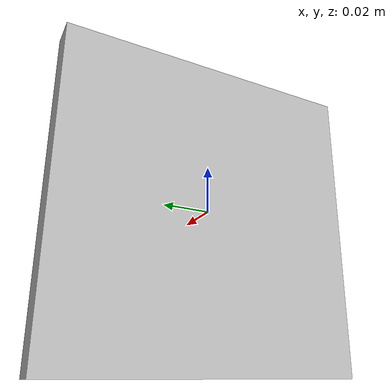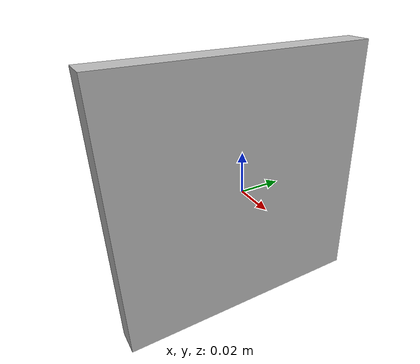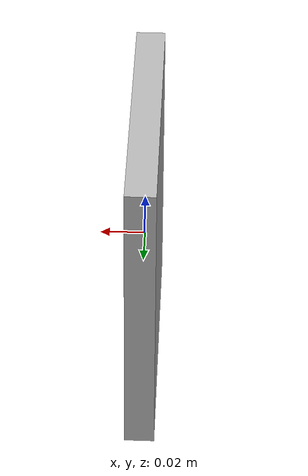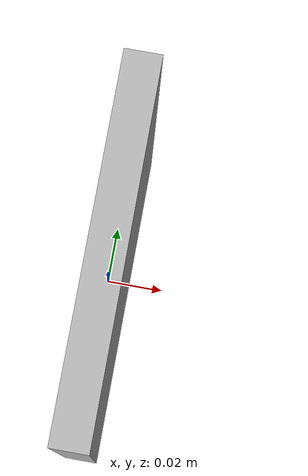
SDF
<?xml version="1.0" ?>
<sdf version="1.5">
  <model name="aruco_marker_0">
    <static>true</static>
    <link name="base">
      <collision name="collision">
        <geometry>
          <box>
            <size>0.013125 0.13125 0.13125</size>
          </box>
        </geometry>
        <surface>
          <friction>
            <ode>
              <mu>100</mu>
              <mu2>50</mu2>
            </ode>
          </friction>
        </surface>
      </collision>

      <visual name="visual">
        <geometry>
          <box>
            <size>0.013125 0.13125 0.13125</size>
          </box>
        </geometry>
        <material>
          <script>
            <uri>model://aruco_marker_0/materials/scripts</uri>
            <uri>model://aruco_marker_0/materials/textures</uri>
            <name>aruco_marker_0/Diffuse</name>
          </script>
        </material>
      </visual>
    </link>

    <joint name="world_joint" type="fixed">
      <child>base</child>
      <parent>world</parent>
      <axis>
        <limit>
          <lower>0</lower>
          <upper>0</upper>
        </limit>
        <xyz>0 1 0</xyz>
        <dynamics>
          <damping>1.0</damping>
        </dynamics>
        <use_parent_model_frame>true</use_parent_model_frame>
      </axis>
      <physics>
        <ode>
          <cfm_damping>1</cfm_damping>
        </ode>
      </physics>
    </joint>
  </model>
</sdf>
